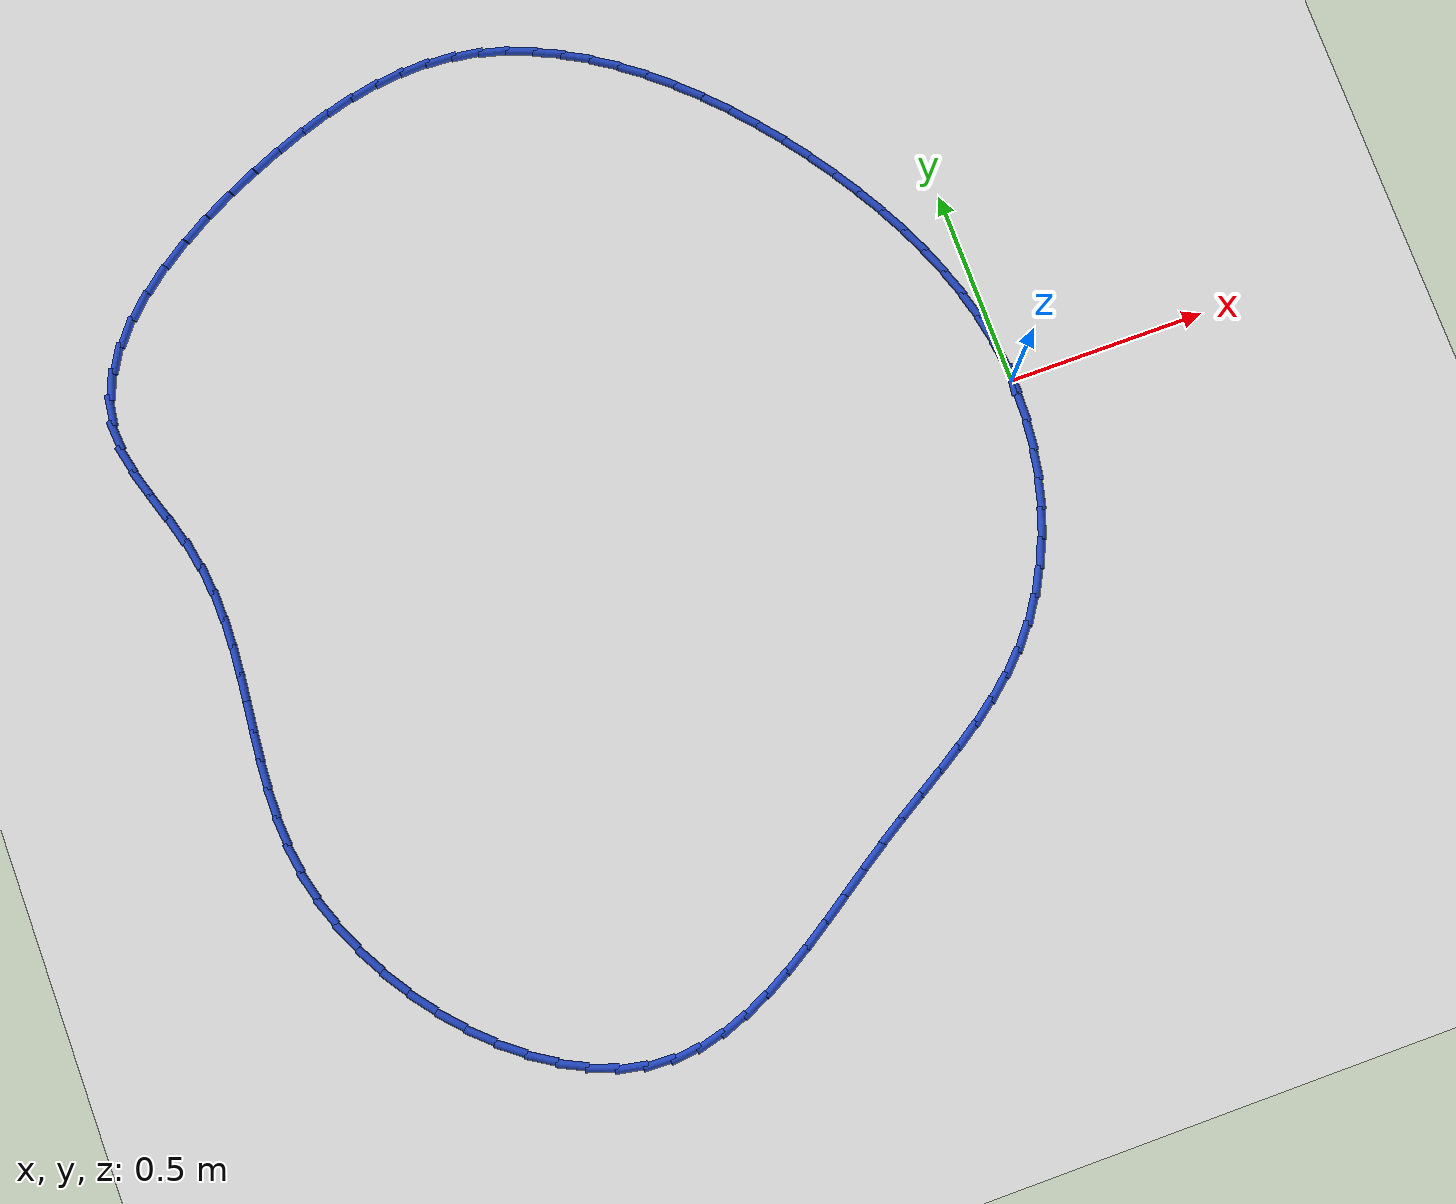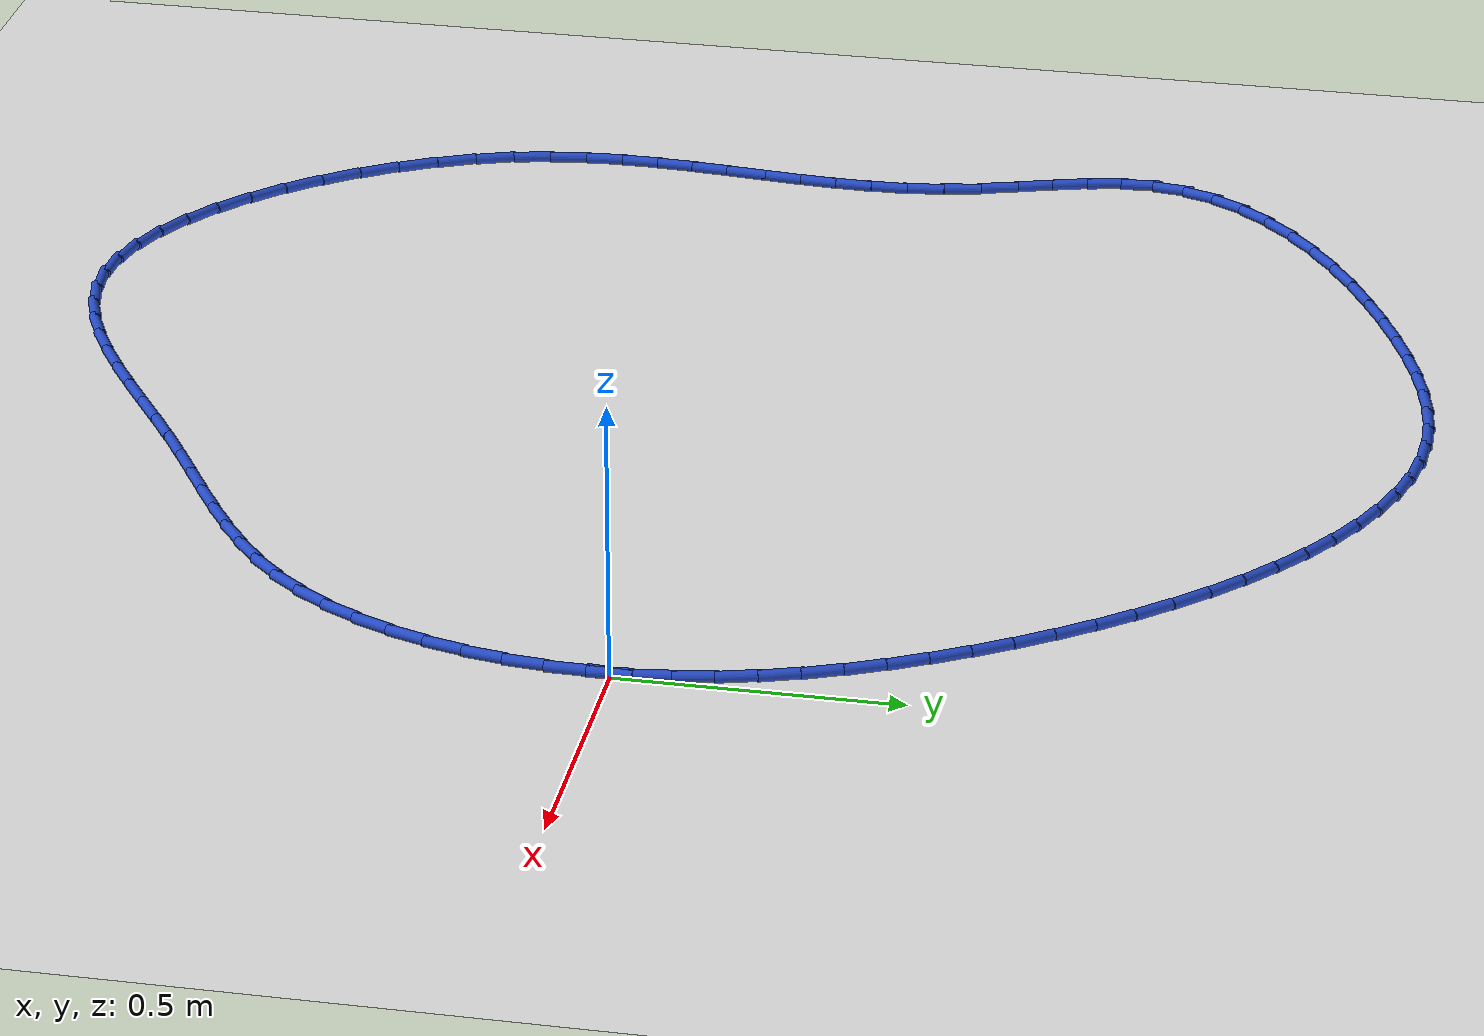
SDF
<sdf version="1.6">
 <world name="default">
  <light name="sun" type="directional">
   <pose>0 0 10 0 -0 0</pose>
   <diffuse>0.8 0.8 0.8 1</diffuse>
   <specular>0.2 0.2 0.2 1</specular>
   <attenuation>
    <range>1000</range>
    <constant>0.9</constant>
    <linear>0.01</linear>
    <quadratic>0.001</quadratic>
   </attenuation>
   <direction>-0.5 0.1 -0.9</direction>
  </light>
  <model name="ground_plane">
   <static>1</static>
   <link name="link">
    <collision name="collision">
     <geometry><plane><normal>0 0 1</normal><size>100 100</size></plane></geometry>
     <surface><friction><ode><mu>100</mu><mu2>50</mu2></ode></friction></surface>
    </collision>
    <visual name="visual">
     <cast_shadows>0</cast_shadows>
     <geometry><plane><normal>0 0 1</normal><size>100 100</size></plane></geometry>
     <material>
      <script><uri>file://media/materials/scripts/gazebo.material</uri><name>Gazebo/WhiteGlow</name></script>
     </material>
    </visual>
   </link>
  </model>
  <gravity>0 0 -9.8</gravity>
  <magnetic_field>6e-06 2.3e-05 -4.2e-05</magnetic_field>
  <atmosphere type="adiabatic"/>
  <physics name="default_physics" default="0" type="ode">
   <max_step_size>0.001</max_step_size>
   <real_time_factor>1</real_time_factor>
   <real_time_update_rate>1000</real_time_update_rate>
  </physics>
  <scene><ambient>0.4 0.4 0.4 1</ambient><background>0.7 0.7 0.7 1</background><shadows>1</shadows></scene>
  <spherical_coordinates>
   <surface_model>EARTH_WGS84</surface_model>
   <latitude_deg>0</latitude_deg>
   <longitude_deg>0</longitude_deg>
   <elevation>0</elevation>
   <heading_deg>0</heading_deg>
  </spherical_coordinates>
  <model name="line">
   <link name="link_0">
    <pose>9.020562075079397e-17 6.938893903907228e-17 0.01 0 1.57 -1.513532271017953</pose>
    <collision name="collision">
     <geometry><cylinder><radius>0.01</radius><length>0.08</length></cylinder></geometry>
    </collision>
    <visual name="visual">
     <material>
      <script><name>Gazebo/Blue</name><uri>file://media/materials/scripts/gazebo.material</uri></script>
     </material>
     <geometry><cylinder><radius>0.01</radius><length>0.08</length></cylinder></geometry>
    </visual>
   </link>
   <link name="link_1">
    <pose>-0.0040987474638153895 0.07149801498437845 0.01 0 1.57 -1.4368989146883544</pose>
    <collision name="collision">
     <geometry><cylinder><radius>0.01</radius><length>0.08</length></cylinder></geometry>
    </collision>
    <visual name="visual">
     <material>
      <script><name>Gazebo/Blue</name><uri>file://media/materials/scripts/gazebo.material</uri></script>
     </material>
     <geometry><cylinder><radius>0.01</radius><length>0.08</length></cylinder></geometry>
    </visual>
   </link>
   <link name="link_2">
    <pose>-0.013576232439059699 0.14185619391292115 0.01 0 1.57 -1.3639493279226345</pose>
    <collision name="collision">
     <geometry><cylinder><radius>0.01</radius><length>0.08</length></cylinder></geometry>
    </collision>
    <visual name="visual">
     <material>
      <script><name>Gazebo/Blue</name><uri>file://media/materials/scripts/gazebo.material</uri></script>
     </material>
     <geometry><cylinder><radius>0.01</radius><length>0.08</length></cylinder></geometry>
    </visual>
   </link>
   <link name="link_3">
    <pose>-0.028119137273458474 0.21115814907475183 0.01 0 1.57 -1.2955797537852545</pose>
    <collision name="collision">
     <geometry><cylinder><radius>0.01</radius><length>0.08</length></cylinder></geometry>
    </collision>
    <visual name="visual">
     <material>
      <script><name>Gazebo/Blue</name><uri>file://media/materials/scripts/gazebo.material</uri></script>
     </material>
     <geometry><cylinder><radius>0.01</radius><length>0.08</length></cylinder></geometry>
    </visual>
   </link>
   <link name="link_4">
    <pose>-0.04741414431473736 0.27948749275899437 0.01 0 1.57 -1.2324096164816662</pose>
    <collision name="collision">
     <geometry><cylinder><radius>0.01</radius><length>0.08</length></cylinder></geometry>
    </collision>
    <visual name="visual">
     <material>
      <script><name>Gazebo/Blue</name><uri>file://media/materials/scripts/gazebo.material</uri></script>
     </material>
     <geometry><cylinder><radius>0.01</radius><length>0.08</length></cylinder></geometry>
    </visual>
   </link>
   <link name="link_5">
    <pose>-0.07114793591062196 0.34692783725477266 0.01 0 1.57 -1.1747949670912783</pose>
    <collision name="collision">
     <geometry><cylinder><radius>0.01</radius><length>0.08</length></cylinder></geometry>
    </collision>
    <visual name="visual">
     <material>
      <script><name>Gazebo/Blue</name><uri>file://media/materials/scripts/gazebo.material</uri></script>
     </material>
     <geometry><cylinder><radius>0.01</radius><length>0.08</length></cylinder></geometry>
    </visual>
   </link>
   <link name="link_6">
    <pose>-0.0990071944088379 0.41356279485121034 0.01 0 1.57 -1.1228685389521924</pose>
    <collision name="collision">
     <geometry><cylinder><radius>0.01</radius><length>0.08</length></cylinder></geometry>
    </collision>
    <visual name="visual">
     <material>
      <script><name>Gazebo/Blue</name><uri>file://media/materials/scripts/gazebo.material</uri></script>
     </material>
     <geometry><cylinder><radius>0.01</radius><length>0.08</length></cylinder></geometry>
    </visual>
   </link>
   <link name="link_7">
    <pose>-0.13067860215711094 0.47947597783743157 0.01 0 1.57 -1.076591918478901</pose>
    <collision name="collision">
     <geometry><cylinder><radius>0.01</radius><length>0.08</length></cylinder></geometry>
    </collision>
    <visual name="visual">
     <material>
      <script><name>Gazebo/Blue</name><uri>file://media/materials/scripts/gazebo.material</uri></script>
     </material>
     <geometry><cylinder><radius>0.01</radius><length>0.08</length></cylinder></geometry>
    </visual>
   </link>
   <link name="link_8">
    <pose>-0.1658488415031665 0.5447509985025599 0.01 0 1.57 -1.0357741318963456</pose>
    <collision name="collision">
     <geometry><cylinder><radius>0.01</radius><length>0.08</length></cylinder></geometry>
    </collision>
    <visual name="visual">
     <material>
      <script><name>Gazebo/Blue</name><uri>file://media/materials/scripts/gazebo.material</uri></script>
     </material>
     <geometry><cylinder><radius>0.01</radius><length>0.08</length></cylinder></geometry>
    </visual>
   </link>
   <link name="link_9">
    <pose>-0.20420563496904318 0.6094681826122147 0.01 0 1.57 -0.9981364597587667</pose>
    <collision name="collision">
     <geometry><cylinder><radius>0.01</radius><length>0.08</length></cylinder></geometry>
    </collision>
    <visual name="visual">
     <material>
      <script><name>Gazebo/Blue</name><uri>file://media/materials/scripts/gazebo.material</uri></script>
     </material>
     <geometry><cylinder><radius>0.01</radius><length>0.08</length></cylinder></geometry>
    </visual>
   </link>
   <link name="link_10">
    <pose>-0.2454979552893944 0.6735143304229299 0.01 0 1.57 -0.9601101103171629</pose>
    <collision name="collision">
     <geometry><cylinder><radius>0.01</radius><length>0.08</length></cylinder></geometry>
    </collision>
    <visual name="visual">
     <material>
      <script><name>Gazebo/Blue</name><uri>file://media/materials/scripts/gazebo.material</uri></script>
     </material>
     <geometry><cylinder><radius>0.01</radius><length>0.08</length></cylinder></geometry>
    </visual>
   </link>
   <link name="link_11">
    <pose>-0.28956905182933207 0.7364783667696629 0.01 0 1.57 -0.9208990667442402</pose>
    <collision name="collision">
     <geometry><cylinder><radius>0.01</radius><length>0.08</length></cylinder></geometry>
    </collision>
    <visual name="visual">
     <material>
      <script><name>Gazebo/Blue</name><uri>file://media/materials/scripts/gazebo.material</uri></script>
     </material>
     <geometry><cylinder><radius>0.01</radius><length>0.08</length></cylinder></geometry>
    </visual>
   </link>
   <link name="link_12">
    <pose>-0.3362702069819267 0.7979238354191461 0.01 0 1.57 -0.879968168368694</pose>
    <collision name="collision">
     <geometry><cylinder><radius>0.01</radius><length>0.08</length></cylinder></geometry>
    </collision>
    <visual name="visual">
     <material>
      <script><name>Gazebo/Blue</name><uri>file://media/materials/scripts/gazebo.material</uri></script>
     </material>
     <geometry><cylinder><radius>0.01</radius><length>0.08</length></cylinder></geometry>
    </visual>
   </link>
   <link name="link_13">
    <pose>-0.385452703140249 0.8574142801381125 0.01 0 1.57 -0.8367628965591513</pose>
    <collision name="collision">
     <geometry><cylinder><radius>0.01</radius><length>0.08</length></cylinder></geometry>
    </collision>
    <visual name="visual">
     <material>
      <script><name>Gazebo/Blue</name><uri>file://media/materials/scripts/gazebo.material</uri></script>
     </material>
     <geometry><cylinder><radius>0.01</radius><length>0.08</length></cylinder></geometry>
    </visual>
   </link>
   <link name="link_14">
    <pose>-0.4369678226973695 0.9145132446932943 0.01 0 1.57 -0.7906959051254628</pose>
    <collision name="collision">
     <geometry><cylinder><radius>0.01</radius><length>0.08</length></cylinder></geometry>
    </collision>
    <visual name="visual">
     <material>
      <script><name>Gazebo/Blue</name><uri>file://media/materials/scripts/gazebo.material</uri></script>
     </material>
     <geometry><cylinder><radius>0.01</radius><length>0.08</length></cylinder></geometry>
    </visual>
   </link>
   <link name="link_15">
    <pose>-0.4906668480463585 0.9687842728514238 0.01 0 1.57 -0.7411368479310416</pose>
    <collision name="collision">
     <geometry><cylinder><radius>0.01</radius><length>0.08</length></cylinder></geometry>
    </collision>
    <visual name="visual">
     <material>
      <script><name>Gazebo/Blue</name><uri>file://media/materials/scripts/gazebo.material</uri></script>
     </material>
     <geometry><cylinder><radius>0.01</radius><length>0.08</length></cylinder></geometry>
    </visual>
   </link>
   <link name="link_16">
    <pose>-0.546401061580287 1.0197909083792338 0.01 0 1.57 -0.6874070579474689</pose>
    <collision name="collision">
     <geometry><cylinder><radius>0.01</radius><length>0.08</length></cylinder></geometry>
    </collision>
    <visual name="visual">
     <material>
      <script><name>Gazebo/Blue</name><uri>file://media/materials/scripts/gazebo.material</uri></script>
     </material>
     <geometry><cylinder><radius>0.01</radius><length>0.08</length></cylinder></geometry>
    </visual>
   </link>
   <link name="link_17">
    <pose>-0.6040217456922251 1.0670966950434564 0.01 0 1.57 -0.6287820626791416</pose>
    <collision name="collision">
     <geometry><cylinder><radius>0.01</radius><length>0.08</length></cylinder></geometry>
    </collision>
    <visual name="visual">
     <material>
      <script><name>Gazebo/Blue</name><uri>file://media/materials/scripts/gazebo.material</uri></script>
     </material>
     <geometry><cylinder><radius>0.01</radius><length>0.08</length></cylinder></geometry>
    </visual>
   </link>
   <link name="link_18">
    <pose>-0.6633801827752437 1.1102651766108247 0.01 0 1.57 -0.5645067915347233</pose>
    <collision name="collision">
     <geometry><cylinder><radius>0.01</radius><length>0.08</length></cylinder></geometry>
    </collision>
    <visual name="visual">
     <material>
      <script><name>Gazebo/Blue</name><uri>file://media/materials/scripts/gazebo.material</uri></script>
     </material>
     <geometry><cylinder><radius>0.01</radius><length>0.08</length></cylinder></geometry>
    </visual>
   </link>
   <link name="link_19">
    <pose>-0.7243276552224132 1.1488598968480708 0.01 0 1.57 -0.4938304875180208</pose>
    <collision name="collision">
     <geometry><cylinder><radius>0.01</radius><length>0.08</length></cylinder></geometry>
    </collision>
    <visual name="visual">
     <material>
      <script><name>Gazebo/Blue</name><uri>file://media/materials/scripts/gazebo.material</uri></script>
     </material>
     <geometry><cylinder><radius>0.01</radius><length>0.08</length></cylinder></geometry>
    </visual>
   </link>
   <link name="link_20">
    <pose>-0.7867154454268042 1.1824443995219274 0.01 0 1.57 -0.4160700742887901</pose>
    <collision name="collision">
     <geometry><cylinder><radius>0.01</radius><length>0.08</length></cylinder></geometry>
    </collision>
    <visual name="visual">
     <material>
      <script><name>Gazebo/Blue</name><uri>file://media/materials/scripts/gazebo.material</uri></script>
     </material>
     <geometry><cylinder><radius>0.01</radius><length>0.08</length></cylinder></geometry>
    </visual>
   </link>
   <link name="link_21">
    <pose>-0.8503948357814869 1.2105822283991265 0.01 0 1.57 -0.3307103093122383</pose>
    <collision name="collision">
     <geometry><cylinder><radius>0.01</radius><length>0.08</length></cylinder></geometry>
    </collision>
    <visual name="visual">
     <material>
      <script><name>Gazebo/Blue</name><uri>file://media/materials/scripts/gazebo.material</uri></script>
     </material>
     <geometry><cylinder><radius>0.01</radius><length>0.08</length></cylinder></geometry>
    </visual>
   </link>
   <link name="link_22">
    <pose>-0.9152171086795322 1.2328369272464013 0.01 0 1.57 -0.2375433378470487</pose>
    <collision name="collision">
     <geometry><cylinder><radius>0.01</radius><length>0.08</length></cylinder></geometry>
    </collision>
    <visual name="visual">
     <material>
      <script><name>Gazebo/Blue</name><uri>file://media/materials/scripts/gazebo.material</uri></script>
     </material>
     <geometry><cylinder><radius>0.01</radius><length>0.08</length></cylinder></geometry>
    </visual>
   </link>
   <link name="link_23">
    <pose>-0.9810335465140112 1.2487720398304842 0.01 0 1.57 -0.13700625393235374</pose>
    <collision name="collision">
     <geometry><cylinder><radius>0.01</radius><length>0.08</length></cylinder></geometry>
    </collision>
    <visual name="visual">
     <material>
      <script><name>Gazebo/Blue</name><uri>file://media/materials/scripts/gazebo.material</uri></script>
     </material>
     <geometry><cylinder><radius>0.01</radius><length>0.08</length></cylinder></geometry>
    </visual>
   </link>
   <link name="link_24">
    <pose>-1.0476982432403381 1.2579630998765994 0.01 0 1.57 -0.03570129155965642</pose>
    <collision name="collision">
     <geometry><cylinder><radius>0.01</radius><length>0.08</length></cylinder></geometry>
    </collision>
    <visual name="visual">
     <material>
      <script><name>Gazebo/Blue</name><uri>file://media/materials/scripts/gazebo.material</uri></script>
     </material>
     <geometry><cylinder><radius>0.01</radius><length>0.08</length></cylinder></geometry>
    </visual>
   </link>
   <link name="link_25">
    <pose>-1.1151559974221594 1.2603724525529558 0.01 0 1.57 0.05775280414912291</pose>
    <collision name="collision">
     <geometry><cylinder><radius>0.01</radius><length>0.08</length></cylinder></geometry>
    </collision>
    <visual name="visual">
     <material>
      <script><name>Gazebo/Blue</name><uri>file://media/materials/scripts/gazebo.material</uri></script>
     </material>
     <geometry><cylinder><radius>0.01</radius><length>0.08</length></cylinder></geometry>
    </visual>
   </link>
   <link name="link_26">
    <pose>-1.1834596828051467 1.2564233315970064 0.01 0 1.57 0.14147845791025945</pose>
    <collision name="collision">
     <geometry><cylinder><radius>0.01</radius><length>0.08</length></cylinder></geometry>
    </collision>
    <visual name="visual">
     <material>
      <script><name>Gazebo/Blue</name><uri>file://media/materials/scripts/gazebo.material</uri></script>
     </material>
     <geometry><cylinder><radius>0.01</radius><length>0.08</length></cylinder></geometry>
    </visual>
   </link>
   <link name="link_27">
    <pose>-1.2526684922821696 1.246565918863763 0.01 0 1.57 0.21488371784638327</pose>
    <collision name="collision">
     <geometry><cylinder><radius>0.01</radius><length>0.08</length></cylinder></geometry>
    </collision>
    <visual name="visual">
     <material>
      <script><name>Gazebo/Blue</name><uri>file://media/materials/scripts/gazebo.material</uri></script>
     </material>
     <geometry><cylinder><radius>0.01</radius><length>0.08</length></cylinder></geometry>
    </visual>
   </link>
   <link name="link_28">
    <pose>-1.3228416187460972 1.2312503962082377 0.01 0 1.57 0.2780601190594311</pose>
    <collision name="collision">
     <geometry><cylinder><radius>0.01</radius><length>0.08</length></cylinder></geometry>
    </collision>
    <visual name="visual">
     <material>
      <script><name>Gazebo/Blue</name><uri>file://media/materials/scripts/gazebo.material</uri></script>
     </material>
     <geometry><cylinder><radius>0.01</radius><length>0.08</length></cylinder></geometry>
    </visual>
   </link>
   <link name="link_29">
    <pose>-1.3940382550897994 1.2109269454854443 0.01 0 1.57 0.3315312261814785</pose>
    <collision name="collision">
     <geometry><cylinder><radius>0.01</radius><length>0.08</length></cylinder></geometry>
    </collision>
    <visual name="visual">
     <material>
      <script><name>Gazebo/Blue</name><uri>file://media/materials/scripts/gazebo.material</uri></script>
     </material>
     <geometry><cylinder><radius>0.01</radius><length>0.08</length></cylinder></geometry>
    </visual>
   </link>
   <link name="link_30">
    <pose>-1.4663175942061464 1.1860457485503948 0.01 0 1.57 0.37603984383470807</pose>
    <collision name="collision">
     <geometry><cylinder><radius>0.01</radius><length>0.08</length></cylinder></geometry>
    </collision>
    <visual name="visual">
     <material>
      <script><name>Gazebo/Blue</name><uri>file://media/materials/scripts/gazebo.material</uri></script>
     </material>
     <geometry><cylinder><radius>0.01</radius><length>0.08</length></cylinder></geometry>
    </visual>
   </link>
   <link name="link_31">
    <pose>-1.5397388289880074 1.1570569872581014 0.01 0 1.57 0.41418421899086694</pose>
    <collision name="collision">
     <geometry><cylinder><radius>0.01</radius><length>0.08</length></cylinder></geometry>
    </collision>
    <visual name="visual">
     <material>
      <script><name>Gazebo/Blue</name><uri>file://media/materials/scripts/gazebo.material</uri></script>
     </material>
     <geometry><cylinder><radius>0.01</radius><length>0.08</length></cylinder></geometry>
    </visual>
   </link>
   <link name="link_32">
    <pose>-1.6141261516899015 1.1243552093771367 0.01 0 1.57 0.45455051961853143</pose>
    <collision name="collision">
     <geometry><cylinder><radius>0.01</radius><length>0.08</length></cylinder></geometry>
    </collision>
    <visual name="visual">
     <material>
      <script><name>Gazebo/Blue</name><uri>file://media/materials/scripts/gazebo.material</uri></script>
     </material>
     <geometry><cylinder><radius>0.01</radius><length>0.08</length></cylinder></geometry>
    </visual>
   </link>
   <link name="link_33">
    <pose>-1.6883146303352359 1.0881007972569516 0.01 0 1.57 0.500701193729105</pose>
    <collision name="collision">
     <geometry><cylinder><radius>0.01</radius><length>0.08</length></cylinder></geometry>
    </collision>
    <visual name="visual">
     <material>
      <script><name>Gazebo/Blue</name><uri>file://media/materials/scripts/gazebo.material</uri></script>
     </material>
     <geometry><cylinder><radius>0.01</radius><length>0.08</length></cylinder></geometry>
    </visual>
   </link>
   <link name="link_34">
    <pose>-1.760879136468271 1.0483925342934197 0.01 0 1.57 0.5546192800356565</pose>
    <collision name="collision">
     <geometry><cylinder><radius>0.01</radius><length>0.08</length></cylinder></geometry>
    </collision>
    <visual name="visual">
     <material>
      <script><name>Gazebo/Blue</name><uri>file://media/materials/scripts/gazebo.material</uri></script>
     </material>
     <geometry><cylinder><radius>0.01</radius><length>0.08</length></cylinder></geometry>
    </visual>
   </link>
   <link name="link_35">
    <pose>-1.8303945404229351 1.0053292035958814 0.01 0 1.57 0.6188394233858482</pose>
    <collision name="collision">
     <geometry><cylinder><radius>0.01</radius><length>0.08</length></cylinder></geometry>
    </collision>
    <visual name="visual">
     <material>
      <script><name>Gazebo/Blue</name><uri>file://media/materials/scripts/gazebo.material</uri></script>
     </material>
     <geometry><cylinder><radius>0.01</radius><length>0.08</length></cylinder></geometry>
    </visual>
   </link>
   <link name="link_36">
    <pose>-1.8954357125331567 0.9590095882736759 0.01 0 1.57 0.6966538803082968</pose>
    <collision name="collision">
     <geometry><cylinder><radius>0.01</radius><length>0.08</length></cylinder></geometry>
    </collision>
    <visual name="visual">
     <material>
      <script><name>Gazebo/Blue</name><uri>file://media/materials/scripts/gazebo.material</uri></script>
     </material>
     <geometry><cylinder><radius>0.01</radius><length>0.08</length></cylinder></geometry>
    </visual>
   </link>
   <link name="link_37">
    <pose>-1.9545775231328657 0.9095324714361435 0.01 0 1.57 0.7922834795940673</pose>
    <collision name="collision">
     <geometry><cylinder><radius>0.01</radius><length>0.08</length></cylinder></geometry>
    </collision>
    <visual name="visual">
     <material>
      <script><name>Gazebo/Blue</name><uri>file://media/materials/scripts/gazebo.material</uri></script>
     </material>
     <geometry><cylinder><radius>0.01</radius><length>0.08</length></cylinder></geometry>
    </visual>
   </link>
   <link name="link_38">
    <pose>-2.0063948425559897 0.8569966361926239 0.01 0 1.57 0.9108282830645478</pose>
    <collision name="collision">
     <geometry><cylinder><radius>0.01</radius><length>0.08</length></cylinder></geometry>
    </collision>
    <visual name="visual">
     <material>
      <script><name>Gazebo/Blue</name><uri>file://media/materials/scripts/gazebo.material</uri></script>
     </material>
     <geometry><cylinder><radius>0.01</radius><length>0.08</length></cylinder></geometry>
    </visual>
   </link>
   <link name="link_39">
    <pose>-2.0494625411364593 0.8015008656524575 0.01 0 1.57 1.0575328134733109</pose>
    <collision name="collision">
     <geometry><cylinder><radius>0.01</radius><length>0.08</length></cylinder></geometry>
    </collision>
    <visual name="visual">
     <material>
      <script><name>Gazebo/Blue</name><uri>file://media/materials/scripts/gazebo.material</uri></script>
     </material>
     <geometry><cylinder><radius>0.01</radius><length>0.08</length></cylinder></geometry>
    </visual>
   </link>
   <link name="link_40">
    <pose>-2.082355489208202 0.7431439429249838 0.01 0 1.57 1.2355606423363326</pose>
    <collision name="collision">
     <geometry><cylinder><radius>0.01</radius><length>0.08</length></cylinder></geometry>
    </collision>
    <visual name="visual">
     <material>
      <script><name>Gazebo/Blue</name><uri>file://media/materials/scripts/gazebo.material</uri></script>
     </material>
     <geometry><cylinder><radius>0.01</radius><length>0.08</length></cylinder></geometry>
    </visual>
   </link>
   <link name="link_41">
    <pose>-2.1036485571051475 0.6820246511195431 0.01 0 1.57 1.4418869854858911</pose>
    <collision name="collision">
     <geometry><cylinder><radius>0.01</radius><length>0.08</length></cylinder></geometry>
    </collision>
    <visual name="visual">
     <material>
      <script><name>Gazebo/Blue</name><uri>file://media/materials/scripts/gazebo.material</uri></script>
     </material>
     <geometry><cylinder><radius>0.01</radius><length>0.08</length></cylinder></geometry>
    </visual>
   </link>
   <link name="link_42">
    <pose>-2.111916615161224 0.6182417733454754 0.01 0 1.57 -1.490583497903334</pose>
    <collision name="collision">
     <geometry><cylinder><radius>0.01</radius><length>0.08</length></cylinder></geometry>
    </collision>
    <visual name="visual">
     <material>
      <script><name>Gazebo/Blue</name><uri>file://media/materials/scripts/gazebo.material</uri></script>
     </material>
     <geometry><cylinder><radius>0.01</radius><length>0.08</length></cylinder></geometry>
    </visual>
   </link>
   <link name="link_43">
    <pose>-2.1065885055067612 0.5519596383021321 0.01 0 1.57 -1.3468227101187786</pose>
    <collision name="collision">
     <geometry><cylinder><radius>0.01</radius><length>0.08</length></cylinder></geometry>
    </collision>
    <visual name="visual">
     <material>
      <script><name>Gazebo/Blue</name><uri>file://media/materials/scripts/gazebo.material</uri></script>
     </material>
     <geometry><cylinder><radius>0.01</radius><length>0.08</length></cylinder></geometry>
    </visual>
   </link>
   <link name="link_44">
    <pose>-2.0910266238867674 0.48364448992026504 0.01 0 1.57 -1.2745760850733592</pose>
    <collision name="collision">
     <geometry><cylinder><radius>0.01</radius><length>0.08</length></cylinder></geometry>
    </collision>
    <visual name="visual">
     <material>
      <script><name>Gazebo/Blue</name><uri>file://media/materials/scripts/gazebo.material</uri></script>
     </material>
     <geometry><cylinder><radius>0.01</radius><length>0.08</length></cylinder></geometry>
    </visual>
   </link>
   <link name="link_45">
    <pose>-2.0697252021508348 0.41384944486528047 0.01 0 1.57 -1.262175718303138</pose>
    <collision name="collision">
     <geometry><cylinder><radius>0.01</radius><length>0.08</length></cylinder></geometry>
    </collision>
    <visual name="visual">
     <material>
      <script><name>Gazebo/Blue</name><uri>file://media/materials/scripts/gazebo.material</uri></script>
     </material>
     <geometry><cylinder><radius>0.01</radius><length>0.08</length></cylinder></geometry>
    </visual>
   </link>
   <link name="link_46">
    <pose>-2.0471785744168516 0.34312762765206645 0.01 0 1.57 -1.3057513819232172</pose>
    <collision name="collision">
     <geometry><cylinder><radius>0.01</radius><length>0.08</length></cylinder></geometry>
    </collision>
    <visual name="visual">
     <material>
      <script><name>Gazebo/Blue</name><uri>file://media/materials/scripts/gazebo.material</uri></script>
     </material>
     <geometry><cylinder><radius>0.01</radius><length>0.08</length></cylinder></geometry>
    </visual>
   </link>
   <link name="link_47">
    <pose>-2.0278810748027034 0.272032162795511 0.01 0 1.57 -1.3966762185837462</pose>
    <collision name="collision">
     <geometry><cylinder><radius>0.01</radius><length>0.08</length></cylinder></geometry>
    </collision>
    <visual name="visual">
     <material>
      <script><name>Gazebo/Blue</name><uri>file://media/materials/scripts/gazebo.material</uri></script>
     </material>
     <geometry><cylinder><radius>0.01</radius><length>0.08</length></cylinder></geometry>
    </visual>
   </link>
   <link name="link_48">
    <pose>-2.015389511701396 0.2010175718758654 0.01 0 1.57 -1.4865426039627656</pose>
    <collision name="collision">
     <geometry><cylinder><radius>0.01</radius><length>0.08</length></cylinder></geometry>
    </collision>
    <visual name="visual">
     <material>
      <script><name>Gazebo/Blue</name><uri>file://media/materials/scripts/gazebo.material</uri></script>
     </material>
     <geometry><cylinder><radius>0.01</radius><length>0.08</length></cylinder></geometry>
    </visual>
   </link>
   <link name="link_49">
    <pose>-2.009403021126023 0.13013265126773157 0.01 0 1.57 -1.559861149987243</pose>
    <collision name="collision">
     <geometry><cylinder><radius>0.01</radius><length>0.08</length></cylinder></geometry>
    </collision>
    <visual name="visual">
     <material>
      <script><name>Gazebo/Blue</name><uri>file://media/materials/scripts/gazebo.material</uri></script>
     </material>
     <geometry><cylinder><radius>0.01</radius><length>0.08</length></cylinder></geometry>
    </visual>
   </link>
   <link name="link_50">
    <pose>-2.0086286617052904 0.059321857017877774 0.01 0 1.57 1.5264021313399527</pose>
    <collision name="collision">
     <geometry><cylinder><radius>0.01</radius><length>0.08</length></cylinder></geometry>
    </collision>
    <visual name="visual">
     <material>
      <script><name>Gazebo/Blue</name><uri>file://media/materials/scripts/gazebo.material</uri></script>
     </material>
     <geometry><cylinder><radius>0.01</radius><length>0.08</length></cylinder></geometry>
    </visual>
   </link>
   <link name="link_51">
    <pose>-2.0117734912599943 -0.011470354911898944 0.01 0 1.57 1.489497115096399</pose>
    <collision name="collision">
     <geometry><cylinder><radius>0.01</radius><length>0.08</length></cylinder></geometry>
    </collision>
    <visual name="visual">
     <material>
      <script><name>Gazebo/Blue</name><uri>file://media/materials/scripts/gazebo.material</uri></script>
     </material>
     <geometry><cylinder><radius>0.01</radius><length>0.08</length></cylinder></geometry>
    </visual>
   </link>
   <link name="link_52">
    <pose>-2.0175445676109294 -0.08229952855980147 0.01 0 1.57 1.4709571777744124</pose>
    <collision name="collision">
     <geometry><cylinder><radius>0.01</radius><length>0.08</length></cylinder></geometry>
    </collision>
    <visual name="visual">
     <material>
      <script><name>Gazebo/Blue</name><uri>file://media/materials/scripts/gazebo.material</uri></script>
     </material>
     <geometry><cylinder><radius>0.01</radius><length>0.08</length></cylinder></geometry>
    </visual>
   </link>
   <link name="link_53">
    <pose>-2.0246489485788928 -0.15322120796403277 0.01 0 1.57 1.4706015072563388</pose>
    <collision name="collision">
     <geometry><cylinder><radius>0.01</radius><length>0.08</length></cylinder></geometry>
    </collision>
    <visual name="visual">
     <material>
      <script><name>Gazebo/Blue</name><uri>file://media/materials/scripts/gazebo.material</uri></script>
     </material>
     <geometry><cylinder><radius>0.01</radius><length>0.08</length></cylinder></geometry>
    </visual>
   </link>
   <link name="link_54">
    <pose>-2.0317936919846806 -0.22429093716279574 0.01 0 1.57 1.4883139167795991</pose>
    <collision name="collision">
     <geometry><cylinder><radius>0.01</radius><length>0.08</length></cylinder></geometry>
    </collision>
    <visual name="visual">
     <material>
      <script><name>Gazebo/Blue</name><uri>file://media/materials/scripts/gazebo.material</uri></script>
     </material>
     <geometry><cylinder><radius>0.01</radius><length>0.08</length></cylinder></geometry>
    </visual>
   </link>
   <link name="link_55">
    <pose>-2.037685855649088 -0.29556426019429327 0.01 0 1.57 1.5240454788635185</pose>
    <collision name="collision">
     <geometry><cylinder><radius>0.01</radius><length>0.08</length></cylinder></geometry>
    </collision>
    <visual name="visual">
     <material>
      <script><name>Gazebo/Blue</name><uri>file://media/materials/scripts/gazebo.material</uri></script>
     </material>
     <geometry><cylinder><radius>0.01</radius><length>0.08</length></cylinder></geometry>
    </visual>
   </link>
   <link name="link_56">
    <pose>-2.0410324973929113 -0.3670967210967284 0.01 0 1.57 -1.5639510347658103</pose>
    <collision name="collision">
     <geometry><cylinder><radius>0.01</radius><length>0.08</length></cylinder></geometry>
    </collision>
    <visual name="visual">
     <material>
      <script><name>Gazebo/Blue</name><uri>file://media/materials/scripts/gazebo.material</uri></script>
     </material>
     <geometry><cylinder><radius>0.01</radius><length>0.08</length></cylinder></geometry>
    </visual>
   </link>
   <link name="link_57">
    <pose>-2.0405406750369455 -0.43894386390830387 0.01 0 1.57 -1.493087801343948</pose>
    <collision name="collision">
     <geometry><cylinder><radius>0.01</radius><length>0.08</length></cylinder></geometry>
    </collision>
    <visual name="visual">
     <material>
      <script><name>Gazebo/Blue</name><uri>file://media/materials/scripts/gazebo.material</uri></script>
     </material>
     <geometry><cylinder><radius>0.01</radius><length>0.08</length></cylinder></geometry>
    </visual>
   </link>
   <link name="link_58">
    <pose>-2.034917446401988 -0.511161232667222 0.01 0 1.57 -1.4064462003763554</pose>
    <collision name="collision">
     <geometry><cylinder><radius>0.01</radius><length>0.08</length></cylinder></geometry>
    </collision>
    <visual name="visual">
     <material>
      <script><name>Gazebo/Blue</name><uri>file://media/materials/scripts/gazebo.material</uri></script>
     </material>
     <geometry><cylinder><radius>0.01</radius><length>0.08</length></cylinder></geometry>
    </visual>
   </link>
   <link name="link_59">
    <pose>-2.022869869308833 -0.5838043714116871 0.01 0 1.57 -1.3095077847130636</pose>
    <collision name="collision">
     <geometry><cylinder><radius>0.01</radius><length>0.08</length></cylinder></geometry>
    </collision>
    <visual name="visual">
     <material>
      <script><name>Gazebo/Blue</name><uri>file://media/materials/scripts/gazebo.material</uri></script>
     </material>
     <geometry><cylinder><radius>0.01</radius><length>0.08</length></cylinder></geometry>
    </visual>
   </link>
   <link name="link_60">
    <pose>-2.003347385544645 -0.6568124357329646 0.01 0 1.57 -1.217805217549845</pose>
    <collision name="collision">
     <geometry><cylinder><radius>0.01</radius><length>0.08</length></cylinder></geometry>
    </collision>
    <visual name="visual">
     <material>
      <script><name>Gazebo/Blue</name><uri>file://media/materials/scripts/gazebo.material</uri></script>
     </material>
     <geometry><cylinder><radius>0.01</radius><length>0.08</length></cylinder></geometry>
    </visual>
   </link>
   <link name="link_61">
    <pose>-1.9765607209101663 -0.7295189351901682 0.01 0 1.57 -1.133654385519038</pose>
    <collision name="collision">
     <geometry><cylinder><radius>0.01</radius><length>0.08</length></cylinder></geometry>
    </collision>
    <visual name="visual">
     <material>
      <script><name>Gazebo/Blue</name><uri>file://media/materials/scripts/gazebo.material</uri></script>
     </material>
     <geometry><cylinder><radius>0.01</radius><length>0.08</length></cylinder></geometry>
    </visual>
   </link>
   <link name="link_62">
    <pose>-1.9431295626886524 -0.8010610033505515 0.01 0 1.57 -1.0545495420401514</pose>
    <collision name="collision">
     <geometry><cylinder><radius>0.01</radius><length>0.08</length></cylinder></geometry>
    </collision>
    <visual name="visual">
     <material>
      <script><name>Gazebo/Blue</name><uri>file://media/materials/scripts/gazebo.material</uri></script>
     </material>
     <geometry><cylinder><radius>0.01</radius><length>0.08</length></cylinder></geometry>
    </visual>
   </link>
   <link name="link_63">
    <pose>-1.903673810318906 -0.8705756719080664 0.01 0 1.57 -0.978191654592776</pose>
    <collision name="collision">
     <geometry><cylinder><radius>0.01</radius><length>0.08</length></cylinder></geometry>
    </collision>
    <visual name="visual">
     <material>
      <script><name>Gazebo/Blue</name><uri>file://media/materials/scripts/gazebo.material</uri></script>
     </material>
     <geometry><cylinder><radius>0.01</radius><length>0.08</length></cylinder></geometry>
    </visual>
   </link>
   <link name="link_64">
    <pose>-1.8588133632397295 -0.9371999725566647 0.01 0 1.57 -0.902406281196446</pose>
    <collision name="collision">
     <geometry><cylinder><radius>0.01</radius><length>0.08</length></cylinder></geometry>
    </collision>
    <visual name="visual">
     <material>
      <script><name>Gazebo/Blue</name><uri>file://media/materials/scripts/gazebo.material</uri></script>
     </material>
     <geometry><cylinder><radius>0.01</radius><length>0.08</length></cylinder></geometry>
    </visual>
   </link>
   <link name="link_65">
    <pose>-1.8091681208899262 -1.0000709369902987 0.01 0 1.57 -0.8250376727179295</pose>
    <collision name="collision">
     <geometry><cylinder><radius>0.01</radius><length>0.08</length></cylinder></geometry>
    </collision>
    <visual name="visual">
     <material>
      <script><name>Gazebo/Blue</name><uri>file://media/materials/scripts/gazebo.material</uri></script>
     </material>
     <geometry><cylinder><radius>0.01</radius><length>0.08</length></cylinder></geometry>
    </visual>
   </link>
   <link name="link_66">
    <pose>-1.7553579827082997 -1.0583255969029208 0.01 0 1.57 -0.743837383943158</pose>
    <collision name="collision">
     <geometry><cylinder><radius>0.01</radius><length>0.08</length></cylinder></geometry>
    </collision>
    <visual name="visual">
     <material>
      <script><name>Gazebo/Blue</name><uri>file://media/materials/scripts/gazebo.material</uri></script>
     </material>
     <geometry><cylinder><radius>0.01</radius><length>0.08</length></cylinder></geometry>
    </visual>
   </link>
   <link name="link_67">
    <pose>-1.698002848133652 -1.111100983988483 0.01 0 1.57 -0.6563595676856852</pose>
    <collision name="collision">
     <geometry><cylinder><radius>0.01</radius><length>0.08</length></cylinder></geometry>
    </collision>
    <visual name="visual">
     <material>
      <script><name>Gazebo/Blue</name><uri>file://media/materials/scripts/gazebo.material</uri></script>
     </material>
     <geometry><cylinder><radius>0.01</radius><length>0.08</length></cylinder></geometry>
    </visual>
   </link>
   <link name="link_68">
    <pose>-1.6377226166047851 -1.1575341299409363 0.01 0 1.57 -0.5598856480891413</pose>
    <collision name="collision">
     <geometry><cylinder><radius>0.01</radius><length>0.08</length></cylinder></geometry>
    </collision>
    <visual name="visual">
     <material>
      <script><name>Gazebo/Blue</name><uri>file://media/materials/scripts/gazebo.material</uri></script>
     </material>
     <geometry><cylinder><radius>0.01</radius><length>0.08</length></cylinder></geometry>
    </visual>
   </link>
   <link name="link_69">
    <pose>-1.575137187560504 -1.1967620664542344 0.01 0 1.57 -0.4514303410995622</pose>
    <collision name="collision">
     <geometry><cylinder><radius>0.01</radius><length>0.08</length></cylinder></geometry>
    </collision>
    <visual name="visual">
     <material>
      <script><name>Gazebo/Blue</name><uri>file://media/materials/scripts/gazebo.material</uri></script>
     </material>
     <geometry><cylinder><radius>0.01</radius><length>0.08</length></cylinder></geometry>
    </visual>
   </link>
   <link name="link_70">
    <pose>-1.5108664604396107 -1.2279218252223283 0.01 0 1.57 -0.3279350934321889</pose>
    <collision name="collision">
     <geometry><cylinder><radius>0.01</radius><length>0.08</length></cylinder></geometry>
    </collision>
    <visual name="visual">
     <material>
      <script><name>Gazebo/Blue</name><uri>file://media/materials/scripts/gazebo.material</uri></script>
     </material>
     <geometry><cylinder><radius>0.01</radius><length>0.08</length></cylinder></geometry>
    </visual>
   </link>
   <link name="link_71">
    <pose>-1.4455303346809085 -1.2501504379391704 0.01 0 1.57 -0.18682260930345498</pose>
    <collision name="collision">
     <geometry><cylinder><radius>0.01</radius><length>0.08</length></cylinder></geometry>
    </collision>
    <visual name="visual">
     <material>
      <script><name>Gazebo/Blue</name><uri>file://media/materials/scripts/gazebo.material</uri></script>
     </material>
     <geometry><cylinder><radius>0.01</radius><length>0.08</length></cylinder></geometry>
    </visual>
   </link>
   <link name="link_72">
    <pose>-1.3797487097231989 -1.2625849362987127 0.01 0 1.57 -0.02835412421437117</pose>
    <collision name="collision">
     <geometry><cylinder><radius>0.01</radius><length>0.08</length></cylinder></geometry>
    </collision>
    <visual name="visual">
     <material>
      <script><name>Gazebo/Blue</name><uri>file://media/materials/scripts/gazebo.material</uri></script>
     </material>
     <geometry><cylinder><radius>0.01</radius><length>0.08</length></cylinder></geometry>
    </visual>
   </link>
   <link name="link_73">
    <pose>-1.314115357840701 -1.2644464113855785 0.01 0 1.57 0.12659606022145467</pose>
    <collision name="collision">
     <geometry><cylinder><radius>0.01</radius><length>0.08</length></cylinder></geometry>
    </collision>
    <visual name="visual">
     <material>
      <script><name>Gazebo/Blue</name><uri>file://media/materials/scripts/gazebo.material</uri></script>
     </material>
     <geometry><cylinder><radius>0.01</radius><length>0.08</length></cylinder></geometry>
    </visual>
   </link>
   <link name="link_74">
    <pose>-1.248855903778823 -1.2561404018675555 0.01 0 1.57 0.258833654493273</pose>
    <collision name="collision">
     <geometry><cylinder><radius>0.01</radius><length>0.08</length></cylinder></geometry>
    </collision>
    <visual name="visual">
     <material>
      <script><name>Gazebo/Blue</name><uri>file://media/materials/scripts/gazebo.material</uri></script>
     </material>
     <geometry><cylinder><radius>0.01</radius><length>0.08</length></cylinder></geometry>
    </visual>
   </link>
   <link name="link_75">
    <pose>-1.1839237942613754 -1.2389481295955322 0.01 0 1.57 0.36593954392068867</pose>
    <collision name="collision">
     <geometry><cylinder><radius>0.01</radius><length>0.08</length></cylinder></geometry>
    </collision>
    <visual name="visual">
     <material>
      <script><name>Gazebo/Blue</name><uri>file://media/materials/scripts/gazebo.material</uri></script>
     </material>
     <geometry><cylinder><radius>0.01</radius><length>0.08</length></cylinder></geometry>
    </visual>
   </link>
   <link name="link_76">
    <pose>-1.1192660932904237 -1.2141713516644244 0.01 0 1.57 0.4491601170942246</pose>
    <collision name="collision">
     <geometry><cylinder><radius>0.01</radius><length>0.08</length></cylinder></geometry>
    </collision>
    <visual name="visual">
     <material>
      <script><name>Gazebo/Blue</name><uri>file://media/materials/scripts/gazebo.material</uri></script>
     </material>
     <geometry><cylinder><radius>0.01</radius><length>0.08</length></cylinder></geometry>
    </visual>
   </link>
   <link name="link_77">
    <pose>-1.054829864868034 -1.183111825169148 0.01 0 1.57 0.5110876147692849</pose>
    <collision name="collision">
     <geometry><cylinder><radius>0.01</radius><length>0.08</length></cylinder></geometry>
    </collision>
    <visual name="visual">
     <material>
      <script><name>Gazebo/Blue</name><uri>file://media/materials/scripts/gazebo.material</uri></script>
     </material>
     <geometry><cylinder><radius>0.01</radius><length>0.08</length></cylinder></geometry>
    </visual>
   </link>
   <link name="link_78">
    <pose>-0.9905621729962737 -1.1470713072046197 0.01 0 1.57 0.5543813401641426</pose>
    <collision name="collision">
     <geometry><cylinder><radius>0.01</radius><length>0.08</length></cylinder></geometry>
    </collision>
    <visual name="visual">
     <material>
      <script><name>Gazebo/Blue</name><uri>file://media/materials/scripts/gazebo.material</uri></script>
     </material>
     <geometry><cylinder><radius>0.01</radius><length>0.08</length></cylinder></geometry>
    </visual>
   </link>
   <link name="link_79">
    <pose>-0.9264100816772076 -1.1073515548657555 0.01 0 1.57 0.5811766010037905</pose>
    <collision name="collision">
     <geometry><cylinder><radius>0.01</radius><length>0.08</length></cylinder></geometry>
    </collision>
    <visual name="visual">
     <material>
      <script><name>Gazebo/Blue</name><uri>file://media/materials/scripts/gazebo.material</uri></script>
     </material>
     <geometry><cylinder><radius>0.01</radius><length>0.08</length></cylinder></geometry>
    </visual>
   </link>
   <link name="link_80">
    <pose>-0.8623206549129027 -1.0652543252474715 0.01 0 1.57 0.5928824148470732</pose>
    <collision name="collision">
     <geometry><cylinder><radius>0.01</radius><length>0.08</length></cylinder></geometry>
    </collision>
    <visual name="visual">
     <material>
      <script><name>Gazebo/Blue</name><uri>file://media/materials/scripts/gazebo.material</uri></script>
     </material>
     <geometry><cylinder><radius>0.01</radius><length>0.08</length></cylinder></geometry>
    </visual>
   </link>
   <link name="link_81">
    <pose>-0.7982409567054248 -1.0220813754446836 0.01 0 1.57 0.5901406077059238</pose>
    <collision name="collision">
     <geometry><cylinder><radius>0.01</radius><length>0.08</length></cylinder></geometry>
    </collision>
    <visual name="visual">
     <material>
      <script><name>Gazebo/Blue</name><uri>file://media/materials/scripts/gazebo.material</uri></script>
     </material>
     <geometry><cylinder><radius>0.01</radius><length>0.08</length></cylinder></geometry>
    </visual>
   </link>
   <link name="link_82">
    <pose>-0.7341180510568405 -0.9791344625523086 0.01 0 1.57 0.5729968158939124</pose>
    <collision name="collision">
     <geometry><cylinder><radius>0.01</radius><length>0.08</length></cylinder></geometry>
    </collision>
    <visual name="visual">
     <material>
      <script><name>Gazebo/Blue</name><uri>file://media/materials/scripts/gazebo.material</uri></script>
     </material>
     <geometry><cylinder><radius>0.01</radius><length>0.08</length></cylinder></geometry>
    </visual>
   </link>
   <link name="link_83">
    <pose>-0.6699026539912132 -0.9377023845427949 0.01 0 1.57 0.5513357648898779</pose>
    <collision name="collision">
     <geometry><cylinder><radius>0.01</radius><length>0.08</length></cylinder></geometry>
    </collision>
    <visual name="visual">
     <material>
      <script><name>Gazebo/Blue</name><uri>file://media/materials/scripts/gazebo.material</uri></script>
     </material>
     <geometry><cylinder><radius>0.01</radius><length>0.08</length></cylinder></geometry>
    </visual>
   </link>
   <link name="link_84">
    <pose>-0.6057730947846309 -0.8982662585997011 0.01 0 1.57 0.541854300311147</pose>
    <collision name="collision">
     <geometry><cylinder><radius>0.01</radius><length>0.08</length></cylinder></geometry>
    </collision>
    <visual name="visual">
     <material>
      <script><name>Gazebo/Blue</name><uri>file://media/materials/scripts/gazebo.material</uri></script>
     </material>
     <geometry><cylinder><radius>0.01</radius><length>0.08</length></cylinder></geometry>
    </visual>
   </link>
   <link name="link_85">
    <pose>-0.5422654747302337 -0.8600376555053582 0.01 0 1.57 0.5466480851968425</pose>
    <collision name="collision">
     <geometry><cylinder><radius>0.01</radius><length>0.08</length></cylinder></geometry>
    </collision>
    <visual name="visual">
     <material>
      <script><name>Gazebo/Blue</name><uri>file://media/materials/scripts/gazebo.material</uri></script>
     </material>
     <geometry><cylinder><radius>0.01</radius><length>0.08</length></cylinder></geometry>
    </visual>
   </link>
   <link name="link_86">
    <pose>-0.4799472596847123 -0.8221168495547229 0.01 0 1.57 0.5664200267006405</pose>
    <collision name="collision">
     <geometry><cylinder><radius>0.01</radius><length>0.08</length></cylinder></geometry>
    </collision>
    <visual name="visual">
     <material>
      <script><name>Gazebo/Blue</name><uri>file://media/materials/scripts/gazebo.material</uri></script>
     </material>
     <geometry><cylinder><radius>0.01</radius><length>0.08</length></cylinder></geometry>
    </visual>
   </link>
   <link name="link_87">
    <pose>-0.41938591550475735 -0.7836041150427507 0.01 0 1.57 0.6018960021016198</pose>
    <collision name="collision">
     <geometry><cylinder><radius>0.01</radius><length>0.08</length></cylinder></geometry>
    </collision>
    <visual name="visual">
     <material>
      <script><name>Gazebo/Blue</name><uri>file://media/materials/scripts/gazebo.material</uri></script>
     </material>
     <geometry><cylinder><radius>0.01</radius><length>0.08</length></cylinder></geometry>
    </visual>
   </link>
   <link name="link_88">
    <pose>-0.36114890804705885 -0.7435997262643979 0.01 0 1.57 0.6536779942593929</pose>
    <collision name="collision">
     <geometry><cylinder><radius>0.01</radius><length>0.08</length></cylinder></geometry>
    </collision>
    <visual name="visual">
     <material>
      <script><name>Gazebo/Blue</name><uri>file://media/materials/scripts/gazebo.material</uri></script>
     </material>
     <geometry><cylinder><radius>0.01</radius><length>0.08</length></cylinder></geometry>
    </visual>
   </link>
   <link name="link_89">
    <pose>-0.30580370316830713 -0.7012039575146198 0.01 0 1.57 0.7219507596638527</pose>
    <collision name="collision">
     <geometry><cylinder><radius>0.01</radius><length>0.08</length></cylinder></geometry>
    </collision>
    <visual name="visual">
     <material>
      <script><name>Gazebo/Blue</name><uri>file://media/materials/scripts/gazebo.material</uri></script>
     </material>
     <geometry><cylinder><radius>0.01</radius><length>0.08</length></cylinder></geometry>
    </visual>
   </link>
   <link name="link_90">
    <pose>-0.2539177667251925 -0.6555170830883728 0.01 0 1.57 0.8060476477479276</pose>
    <collision name="collision">
     <geometry><cylinder><radius>0.01</radius><length>0.08</length></cylinder></geometry>
    </collision>
    <visual name="visual">
     <material>
      <script><name>Gazebo/Blue</name><uri>file://media/materials/scripts/gazebo.material</uri></script>
     </material>
     <geometry><cylinder><radius>0.01</radius><length>0.08</length></cylinder></geometry>
    </visual>
   </link>
   <link name="link_91">
    <pose>-0.2060585645744054 -0.6056393772806123 0.01 0 1.57 0.9030045759740994</pose>
    <collision name="collision">
     <geometry><cylinder><radius>0.01</radius><length>0.08</length></cylinder></geometry>
    </collision>
    <visual name="visual">
     <material>
      <script><name>Gazebo/Blue</name><uri>file://media/materials/scripts/gazebo.material</uri></script>
     </material>
     <geometry><cylinder><radius>0.01</radius><length>0.08</length></cylinder></geometry>
    </visual>
   </link>
   <link name="link_92">
    <pose>-0.1627709785624835 -0.5507522924554912 0.01 0 1.57 0.9992514586884667</pose>
    <collision name="collision">
     <geometry><cylinder><radius>0.01</radius><length>0.08</length></cylinder></geometry>
    </collision>
    <visual name="visual">
     <material>
      <script><name>Gazebo/Blue</name><uri>file://media/materials/scripts/gazebo.material</uri></script>
     </material>
     <geometry><cylinder><radius>0.01</radius><length>0.08</length></cylinder></geometry>
    </visual>
   </link>
   <link name="link_93">
    <pose>-0.12433484174111394 -0.4909899970476831 0.01 0 1.57 1.088113404760451</pose>
    <collision name="collision">
     <geometry><cylinder><radius>0.01</radius><length>0.08</length></cylinder></geometry>
    </collision>
    <visual name="visual">
     <material>
      <script><name>Gazebo/Blue</name><uri>file://media/materials/scripts/gazebo.material</uri></script>
     </material>
     <geometry><cylinder><radius>0.01</radius><length>0.08</length></cylinder></geometry>
    </visual>
   </link>
   <link name="link_94">
    <pose>-0.09085778865468672 -0.42710562584223954 0.01 0 1.57 1.1710050308873612</pose>
    <collision name="collision">
     <geometry><cylinder><radius>0.01</radius><length>0.08</length></cylinder></geometry>
    </collision>
    <visual name="visual">
     <material>
      <script><name>Gazebo/Blue</name><uri>file://media/materials/scripts/gazebo.material</uri></script>
     </material>
     <geometry><cylinder><radius>0.01</radius><length>0.08</length></cylinder></geometry>
    </visual>
   </link>
   <link name="link_95">
    <pose>-0.062444529507310574 -0.359862825145246 0.01 0 1.57 1.2494896629713659</pose>
    <collision name="collision">
     <geometry><cylinder><radius>0.01</radius><length>0.08</length></cylinder></geometry>
    </collision>
    <visual name="visual">
     <material>
      <script><name>Gazebo/Blue</name><uri>file://media/materials/scripts/gazebo.material</uri></script>
     </material>
     <geometry><cylinder><radius>0.01</radius><length>0.08</length></cylinder></geometry>
    </visual>
   </link>
   <link name="link_96">
    <pose>-0.03919977450309441 -0.290025241262788 0.01 0 1.57 1.325103912210246</pose>
    <collision name="collision">
     <geometry><cylinder><radius>0.01</radius><length>0.08</length></cylinder></geometry>
    </collision>
    <visual name="visual">
     <material>
      <script><name>Gazebo/Blue</name><uri>file://media/materials/scripts/gazebo.material</uri></script>
     </material>
     <geometry><cylinder><radius>0.01</radius><length>0.08</length></cylinder></geometry>
    </visual>
   </link>
   <link name="link_97">
    <pose>-0.021228233846146402 -0.21835652050094895 0.01 0 1.57 1.3993550446691592</pose>
    <collision name="collision">
     <geometry><cylinder><radius>0.01</radius><length>0.08</length></cylinder></geometry>
    </collision>
    <visual name="visual">
     <material>
      <script><name>Gazebo/Blue</name><uri>file://media/materials/scripts/gazebo.material</uri></script>
     </material>
     <geometry><cylinder><radius>0.01</radius><length>0.08</length></cylinder></geometry>
    </visual>
   </link>
   <link name="link_98">
    <pose>-0.008634617740575536 -0.14562030916581464 0.01 0 1.57 1.4737449048097784</pose>
    <collision name="collision">
     <geometry><cylinder><radius>0.01</radius><length>0.08</length></cylinder></geometry>
    </collision>
    <visual name="visual">
     <material>
      <script><name>Gazebo/Blue</name><uri>file://media/materials/scripts/gazebo.material</uri></script>
     </material>
     <geometry><cylinder><radius>0.01</radius><length>0.08</length></cylinder></geometry>
    </visual>
   </link>
   <link name="link_99">
    <pose>-0.001523636390490482 -0.07258025356347 0.01 0 1.57 1.5498069727818495</pose>
    <collision name="collision">
     <geometry><cylinder><radius>0.01</radius><length>0.08</length></cylinder></geometry>
    </collision>
    <visual name="visual">
     <material>
      <script><name>Gazebo/Blue</name><uri>file://media/materials/scripts/gazebo.material</uri></script>
     </material>
     <geometry><cylinder><radius>0.01</radius><length>0.08</length></cylinder></geometry>
    </visual>
   </link>
   <link name="link_100">
    <pose>7.632783294297951e-17 -4.163336342344337e-17 0.01 0 1.57 1.446441332248135</pose>
    <collision name="collision">
     <geometry><cylinder><radius>0.01</radius><length>0.08</length></cylinder></geometry>
    </collision>
    <visual name="visual">
     <material>
      <script><name>Gazebo/Blue</name><uri>file://media/materials/scripts/gazebo.material</uri></script>
     </material>
     <geometry><cylinder><radius>0.01</radius><length>0.08</length></cylinder></geometry>
    </visual>
   </link>
  </model>
 </world>
</sdf>
